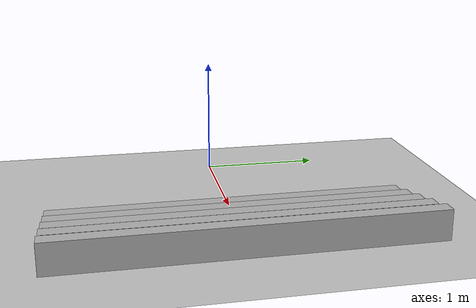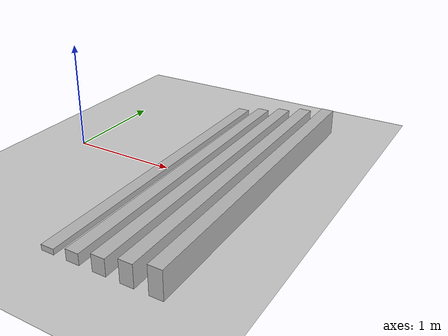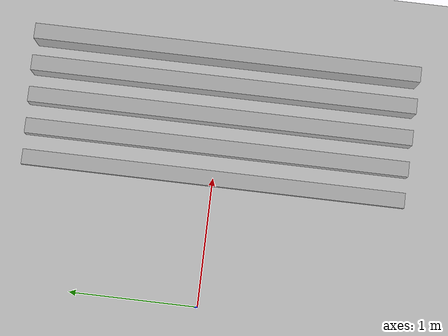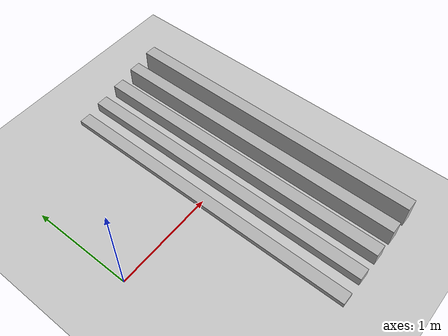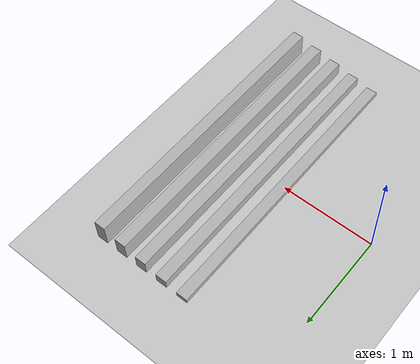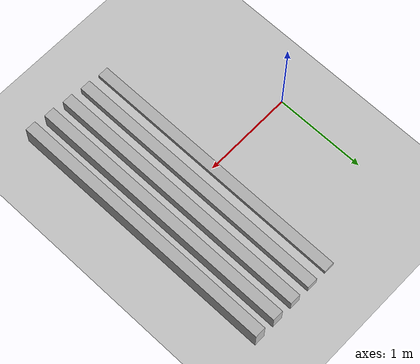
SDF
<?xml version="1.0" ?>
<sdf version="1.4">
  <world name="default">
    <include>
      <uri>model://ground_plane</uri>
    </include>
    <include>
      <uri>model://sun</uri>
    </include>
    <include>
    <uri>model://gazebo_worlds/models/pallet_stairs</uri>
      <pose>0 0 0 0 0 0</pose>
      <static>true</static>
    </include>

    <physics type="ode">
      <gravity>0 0 -9.81</gravity>
    </physics>
  </world>
</sdf>

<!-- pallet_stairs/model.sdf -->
<sdf version='1.4'>

  <model name="pallet_stairs">
    <static>true</static>

    <link name='rail_1'>
      <pose>1.0 0.0 0.025 0 0 0</pose>
      <collision name='collision'>
        <geometry>
          <box>
            <size>0.12 3.0 0.05</size>
          </box>
        </geometry>
      </collision>
      <visual name='visual'>
        <geometry>
          <box>
            <size>0.12 3.0 0.05</size>
          </box>
        </geometry>
      </visual>
    </link>

    <link name='rail_2'>
      <pose>1.24 0.0 0.05 0 0 0</pose>
      <collision name='collision'>
        <geometry>
          <box>
            <size>0.12 3.0 0.1</size>
          </box>
        </geometry>
      </collision>
      <visual name='visual'>
        <geometry>
          <box>
            <size>0.12 3.0 0.1</size>
          </box>
        </geometry>
      </visual>
    </link>

    <link name='rail_3'>
      <pose>1.48 0.0 0.075 0 0 0</pose>
      <collision name='collision'>
        <geometry>
          <box>
            <size>0.12 3.0 0.15</size>
          </box>
        </geometry>
      </collision>
      <visual name='visual'>
        <geometry>
          <box>
            <size>0.12 3.0 0.15</size>
          </box>
        </geometry>
      </visual>
    </link>

    <link name='rail_4'>
      <pose>1.72 0.0 0.1 0 0 0</pose>
      <collision name='collision'>
        <geometry>
          <box>
            <size>0.12 3.0 0.2</size>
          </box>
        </geometry>
      </collision>
      <visual name='visual'>
        <geometry>
          <box>
            <size>0.12 3.0 0.2</size>
          </box>
        </geometry>
      </visual>
    </link>

    <link name='rail_5'>
      <pose>1.96 0.0 0.125 0 0 0</pose>
      <collision name='collision'>
        <geometry>
          <box>
            <size>0.12 3.0 0.25</size>
          </box>
        </geometry>
      </collision>
      <visual name='visual'>
        <geometry>
          <box>
            <size>0.12 3.0 0.25</size>
          </box>
        </geometry>
      </visual>
    </link>

  </model>

</sdf>
